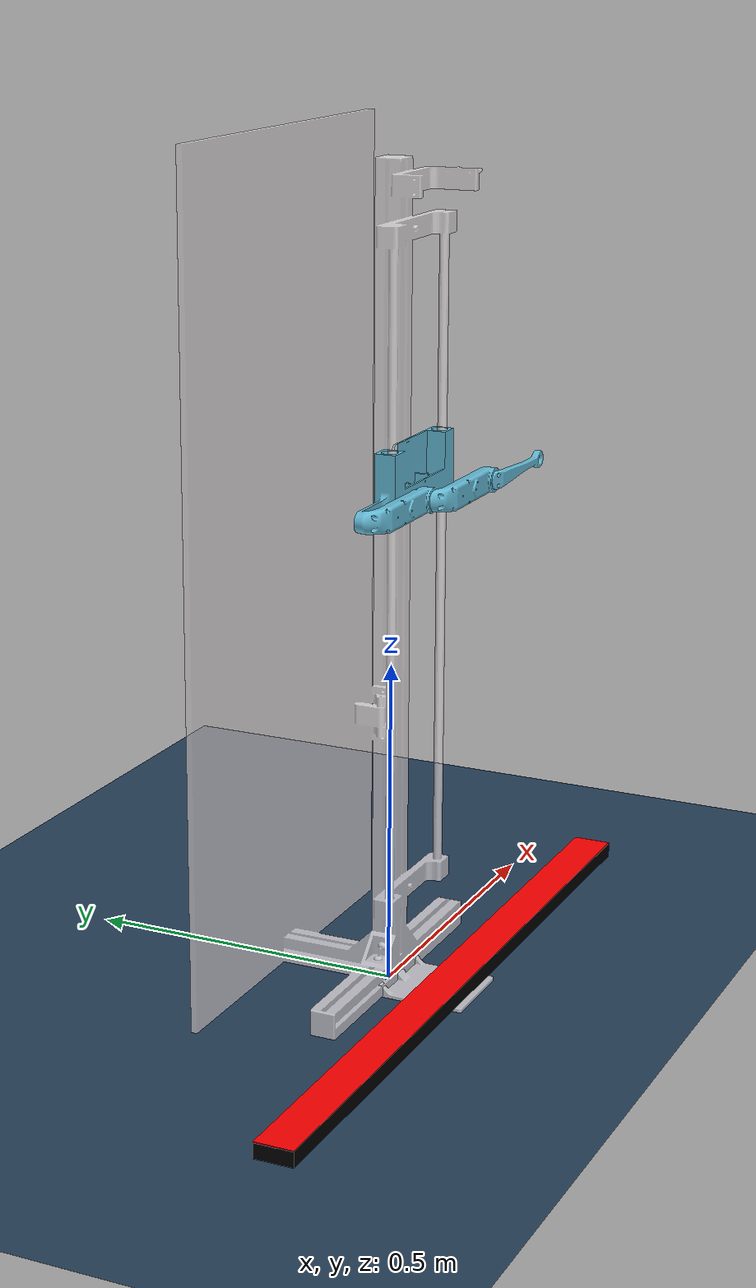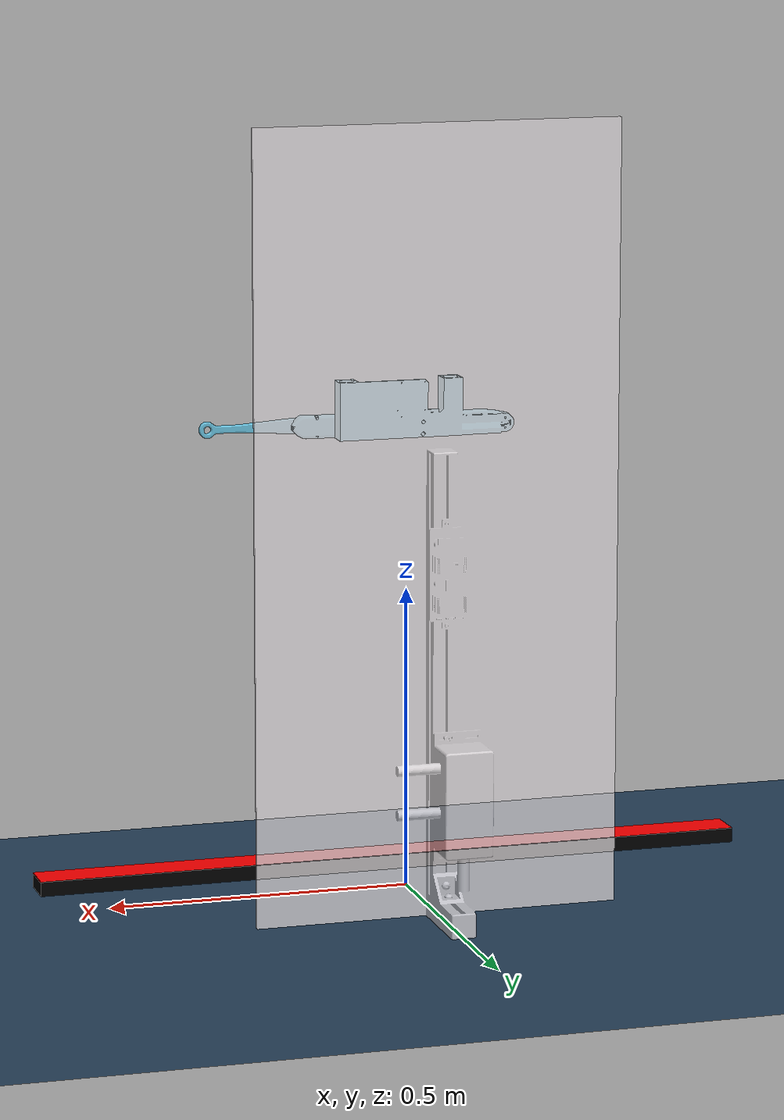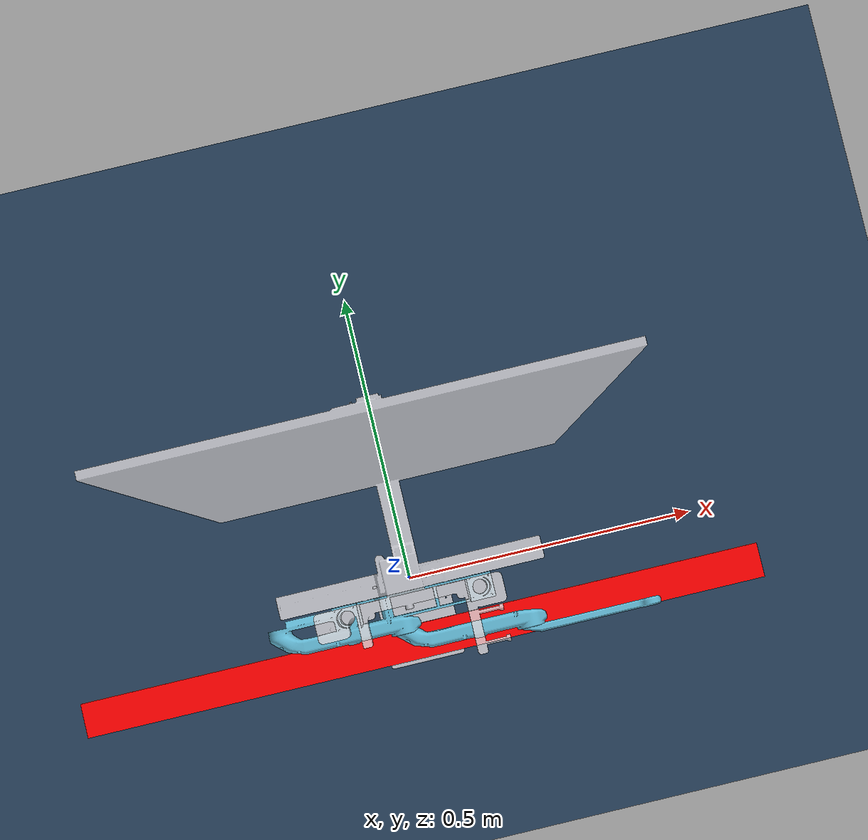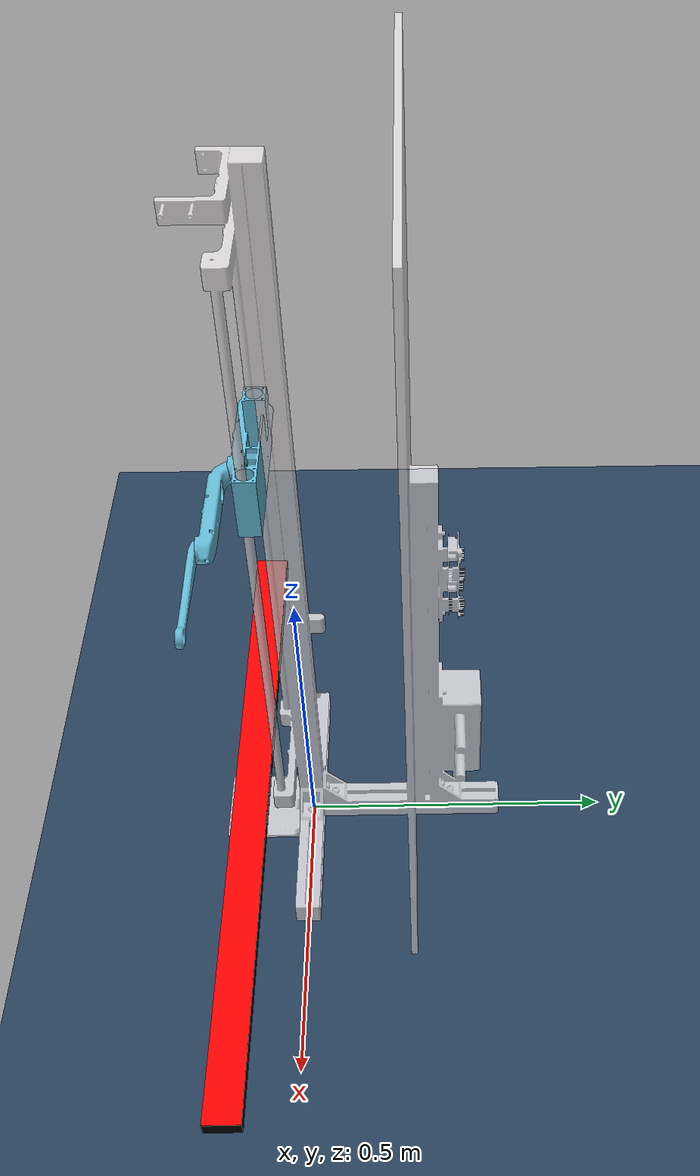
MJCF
<mujoco model="stand_fully">

  <!-- ===== COMPILATION & SIMULATION OPTIONS ===== -->
  <compiler angle="radian" autolimits="true"/>
  <option timestep="0.002" integrator="RK4" solver="Newton" gravity="  0 0 -9.81  "/>

  <!-- ===== ASSETS ===== -->
      <!-- Meshes STl file : -->
  <asset>
    <!-- Meshes stand in m  -->
    <mesh name="stand"   file="assets/2DOF_leg/stand.stl" scale="0.001 0.001 0.001"/>

    <!-- Meshes scole stand in m -->
    <mesh name="socle" file="assets/2DOF_leg/socle.stl" scale="0.001 0.001 0.001"/>

    <!-- hip_supported in m -->
    <mesh name="hip_base"   file="assets/2DOF_leg/hips_supported.stl" scale="0.001 0.001 0.001"/>

    <!-- upper base in cm -->
    <mesh name="upper_base" file="assets/2DOF_leg/upper_leg.stl" scale="0.01 0.01 0.01"/>

      <!-- leg  base in cm -->
    <mesh name="lower_leg"  file="assets/2DOF_leg/leg.stl" scale="0.01 0.01 0.01"/>

    <texture name="tex_ground" type="2d" builtin="checker"
             rgb1="0.2 0.3 0.4" rgb2="0.1 0.2 0.3"
             mark="edge" markrgb="0.8 0.8 0.8" width="512" height="512"/>
    <material name="mat_ground" texture="tex_ground" texuniform="true" texrepeat="5 5" reflectance="0.2"/>
  </asset>

  <!-- ===== DEFAULTS ===== -->
  <default>
    <!-- general parameter 0.3  -->
    <joint armature="0.01" damping="0.5"/>
    <geom friction="0.05 0.3 0.3" margin="0.002" solref="-500 -50" solimp="0.9 0.9 0.01"/>

    <!-- Leg class -->
    <default class="leg_part">
      <geom contype="0" conaffinity="0" group="0"/>
    </default>

    <!-- Motor class -->
    <default class="motor">
      <motor ctrlrange="-1 1" forcerange="-10 10" gear="1000"/>
    </default>
  </default>

  <!-- ===== World ===== -->
  <worldbody>
    <!-- Ground and Light -->
    <geom name="floor" type="plane" pos="0 0 0" size="0 0 0.05" material="mat_ground"/>
    <light directional="true" pos="0 0 5" dir="0 0 -1" diffuse=".9 .9 .9" specular=".2 .2 .2"/>

    <!-- Main body ( fixed stand) -->
    <body name="base_0" pos="0 0 0.04" quat="0.70710678 0.70710678 0 0" >
      <geom name="base_stand" type="mesh" mesh="stand" rgba="0.94509803921568621 0.9254901960784314 0.9372549019607843 0.8"/>
      <inertial mass="150" pos="0 0 0" diaginertia="0.3 0.3 0.3"/>
        <!-- Firts joint translation axe z: hip leg range="0.0725 1"-->
        <body name="hip" pos="0.01 0.7 0" quat="1 0 0 0" childclass="leg_part">
        <joint name="hip_joint" type="slide" pos="0 0 0.15" range="-0.001 1" axis="0 1 0" />
        <geom name="hip_geom" type="mesh" mesh="hip_base"  rgba="0.38823529411764707 0.7254901960784313 0.8352941176470589 1"/>
        <inertial mass="25" pos="0 0 0" diaginertia="0.006 0.006 0.006"/>
        <!-- Second joint rotation axe x: range="-3.14 0" -2.356194490192345 -2.35 -->
            <body name="upper_leg" pos=" 0.135 0.02 0.09" quat="0.70710678  0 -0.70710678 0" childclass="leg_part">
            <joint name="upper_joint" type="hinge" pos=" 0 0 0.161" axis="1 0 0" damping ="1.0"/>
            <geom name="upper_geom" type="mesh" mesh="upper_base" rgba="0.38823529411764707 0.7254901960784313 0.8352941176470589 1"/>
            <inertial mass="15" pos="0 0 -0.05" diaginertia="0.003 0.003 0.003"/>
            <!-- Third joint rotation axe x: leg 0 0 0.161 s -3.14 0 -->
                <body name="leg" pos="0.016 0 0 " euler="0 0 3.14" childclass="leg_part">
                <joint name="leg_joint" type="hinge" pos=" 0 0 0" axis="1 0 0"  damping ="1.0"/>
                <geom name="leg_geom" type="mesh" mesh="lower_leg" rgba="0.38823529411764707 0.7254901960784313 0.8352941176470589 1"/>
                <inertial mass="15" pos="0 0 -0.05" diaginertia="0.002 0.002 0.002"/>
                </body>
            </body>
        </body>
    </body>
    <body name="socle_body" pos="0.04 -0.05 0" quat="1 0 0 0">
       <geom name="socle_geom" type="mesh" mesh="socle" rgba="0.94509803921568621 0.9254901960784314 0.9372549019607843 0.8"/>
       <site name="socle_site" type= "box" pos="-0.043 -0.06 0.03"  size="0.6 0.03 0.001" rgba="1 0 0 1"/>
       <geom name="physic_geom" type="box" pos="-0.043 -0.06 0.018" size="0.6 0.03 0.012" contype="1" conaffinity="1" rgba="0 0 0 1"/>
    </body>
  </worldbody>

<!-- Actuator definition by joint  the actautor for the hip was for the design-->
<actuator>
    <motor name="upper_motor" joint="upper_joint" class="motor" ctrlrange="-40 40" forcerange="-40 40" gear="1"/> <!-- Rotation  -->
    <motor name="leg_motor"   joint="leg_joint"   class="motor" ctrlrange="-40 40" forcerange="-40 40" gear="1"/>  <!-- Rotation  -->
</actuator>

<!-- Sensor to get data and have a good control on the feedback-->
<sensor>
  <!-- Hip position -->
  <jointpos name="hip_position" joint="hip_joint"/>

  <!-- Torques applied by each actuator-->
  <!-- Torques Upper_leg-->
  <actuatorfrc name="upper_torque" actuator="upper_motor"/>
  <!-- Torques Leg-->
  <actuatorfrc name="leg_torque" actuator="leg_motor"/>

  <!-- contact sensor to get the force -->
  <force name="socle_contact" site="socle_site"/>
</sensor>

</mujoco>
